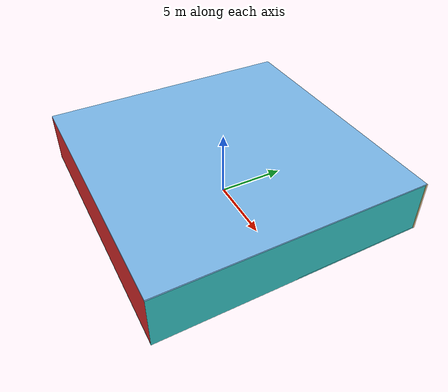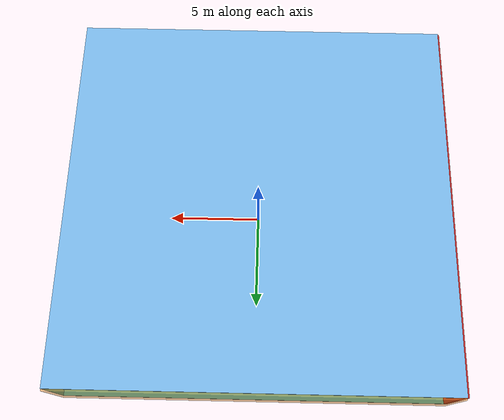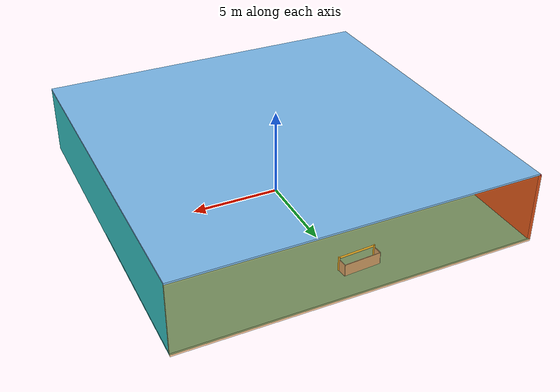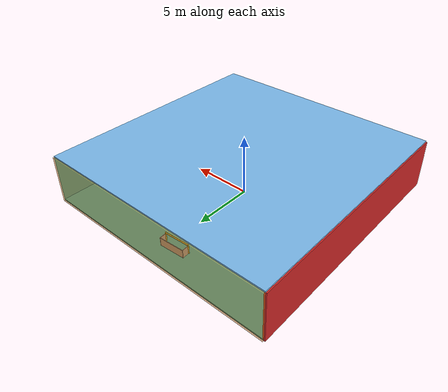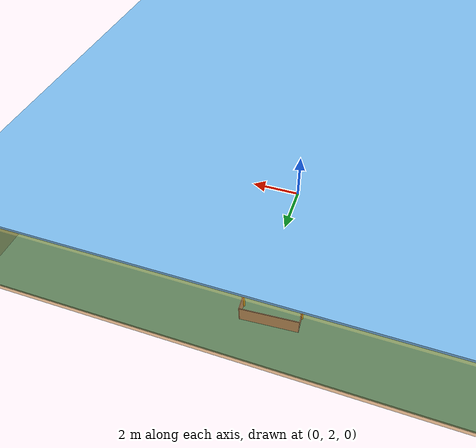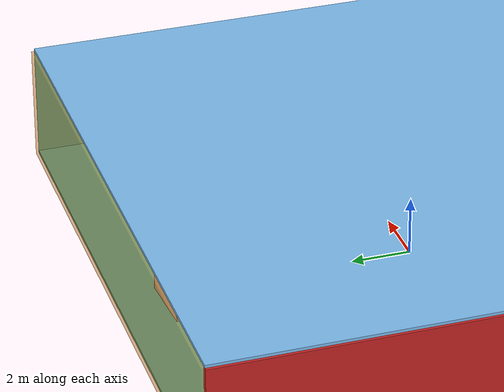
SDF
<sdf version="1.4">
 <world name="default">
  <physics type="ode">
   <max_step_size>0.001</max_step_size>
   <real_time_factor>1</real_time_factor>
   <real_time_update_rate>1000</real_time_update_rate>
   <gravity>0 0 -9.8</gravity>
  </physics>
  <scene><ambient>0.4 0.4 0.4 1</ambient><background>0.7 0.7 0.7 1</background><shadows>1</shadows></scene>
  <model name="Surrounding">
   <static>1</static>
   <link name="Ceiling">
    <collision name="Ceiling_Collision"><geometry><box><size>20 20 0.1</size></box></geometry></collision>
    <visual name="Ceiling_Visual">
     <geometry><box><size>20 20 0.1</size></box></geometry>
     <material>
      <script><uri>file://media/materials/scripts/gazebo.material</uri><name>Gazebo/SkyBlue</name></script>
     </material>
    </visual>
    <pose>0 0 4.05 0 0 0</pose>
   </link>
   <link name="Wall_South">
    <collision name="Wall_South_Collision">
     <geometry><box><size>20 0 4</size></box></geometry>
     <pose>0 0 2 0 -0 0</pose>
    </collision>
    <visual name="Wall_South_Visual">
     <pose>0 0 2 0 -0 0</pose>
     <geometry><box><size>20 0 4</size></box></geometry>
     <material>
      <script><uri>file://media/materials/scripts/gazebo.material</uri><name>Gazebo/Red</name></script>
     </material>
    </visual>
    <velocity_decay><linear>0</linear><angular>0</angular></velocity_decay>
    <pose>0 -10 0 0 -0 0</pose>
   </link>
   <link name="Wall_East">
    <collision name="Wall_21_Collision">
     <geometry><box><size>20 0 4</size></box></geometry>
     <pose>0 0 2 0 -0 0</pose>
    </collision>
    <visual name="Wall_21_Visual">
     <pose>0 0 2 0 -0 0</pose>
     <geometry><box><size>20 0 4</size></box></geometry>
     <material>
      <script><uri>file://media/materials/scripts/gazebo.material</uri><name>Gazebo/TurquoiseGlow</name></script>
     </material>
    </visual>
    <velocity_decay><linear>0</linear><angular>0</angular></velocity_decay>
    <pose>10 0 0 0 -0 1.5708</pose>
   </link>
   <link name="Wall_North">
    <collision name="Wall_22_Collision">
     <geometry><box><size>20 0.2 4</size></box></geometry>
     <pose>0 0 2 0 -0 0</pose>
    </collision>
    <visual name="Wall_22_Visual">
     <pose>0 0 2 0 -0 0</pose>
     <geometry><box><size>20 0.2 4</size></box></geometry>
     <material>
      <script>
       <uri>file://media/materials/scripts/gazebo.material</uri>
       <name>Gazebo/OrangeTransparent</name>
      </script>
     </material>
    </visual>
    <velocity_decay><linear>0</linear><angular>0</angular></velocity_decay>
    <pose>0 10 0 0 -0 0</pose>
   </link>
   <link name="Wall_West">
    <collision name="Wall_23_Collision">
     <geometry><box><size>20 0.2 4</size></box></geometry>
     <pose>0 0 2 0 -0 0</pose>
    </collision>
    <visual name="Wall_23_Visual">
     <pose>0 0 2 0 -0 0</pose>
     <geometry><box><size>20 0.2 4</size></box></geometry>
     <material>
      <script><uri>file://media/materials/scripts/gazebo.material</uri><name>Gazebo/RedGlow</name></script>
     </material>
    </visual>
    <velocity_decay><linear>0</linear><angular>0</angular></velocity_decay>
    <pose>-10 0 0 0 0 -1.5708</pose>
   </link>
   <link name="Ground_link">
    <collision name="collision">
     <pose>0 0 .05 0 -0 0</pose>
     <geometry><box><size>20 20 0.1</size></box></geometry>
    </collision>
    <visual name="visual">
     <pose>0 0 .05 0 -0 0</pose>
     <geometry><box><size>20 20 0.1</size></box></geometry>
     <material>
      <script><uri>file://media/materials/scripts/gazebo.material</uri><name>Gazebo/TurquoiseGlow</name></script>
     </material>
    </visual>
   </link>
   <static>1</static>
  </model>
  <spherical_coordinates>
   <surface_model>EARTH_WGS84</surface_model>
   <latitude_deg>0</latitude_deg>
   <longitude_deg>0</longitude_deg>
   <elevation>0</elevation>
   <heading_deg>0</heading_deg>
  </spherical_coordinates>
  <light name="lightball_0" type="diffuse">
   <diffuse>0.8 0.8 0.8 1</diffuse>
   <specular>0.2 0.2 0.2 1</specular>
   <attenuation>
    <range>100</range>
    <constant>0.7</constant>
    <linear>0.01</linear>
    <quadratic>0.001</quadratic>
   </attenuation>
   <direction>-0.5 0.1 -0.9</direction>
   <pose>1.47352804204 -2.65617357011 1.59800850372 0 0 0</pose>
  </light>
  <light name="lightball_1" type="diffuse">
   <diffuse>0.8 0.8 0.8 1</diffuse>
   <specular>0.2 0.2 0.2 1</specular>
   <attenuation>
    <range>100</range>
    <constant>0.7</constant>
    <linear>0.01</linear>
    <quadratic>0.001</quadratic>
   </attenuation>
   <direction>-0.5 0.1 -0.9</direction>
   <pose>-5.87231763817 -1.18939537517 3.20949819112 0 0 0</pose>
  </light>
  <light name="lightball_2" type="diffuse">
   <diffuse>0.8 0.8 0.8 1</diffuse>
   <specular>0.2 0.2 0.2 1</specular>
   <attenuation>
    <range>100</range>
    <constant>0.7</constant>
    <linear>0.01</linear>
    <quadratic>0.001</quadratic>
   </attenuation>
   <direction>-0.5 0.1 -0.9</direction>
   <pose>6.95654675496 -2.20131014088 3.28160814113 0 0 0</pose>
  </light>
  <light name="lightball_3" type="diffuse">
   <diffuse>0.8 0.8 0.8 1</diffuse>
   <specular>0.2 0.2 0.2 1</specular>
   <attenuation>
    <range>100</range>
    <constant>0.7</constant>
    <linear>0.01</linear>
    <quadratic>0.001</quadratic>
   </attenuation>
   <direction>-0.5 0.1 -0.9</direction>
   <pose>-0.931437812217 8.7429273224 3.04738062278 0 0 0</pose>
  </light>
  <light name="lightball_4" type="diffuse">
   <diffuse>0.8 0.8 0.8 1</diffuse>
   <specular>0.2 0.2 0.2 1</specular>
   <attenuation>
    <range>100</range>
    <constant>0.7</constant>
    <linear>0.01</linear>
    <quadratic>0.001</quadratic>
   </attenuation>
   <direction>-0.5 0.1 -0.9</direction>
   <pose>3.97386507129 2.63965548264 1.18631742766 0 0 0</pose>
  </light>
  <light name="lightball_5" type="diffuse">
   <diffuse>0.8 0.8 0.8 1</diffuse>
   <specular>0.2 0.2 0.2 1</specular>
   <attenuation>
    <range>100</range>
    <constant>0.7</constant>
    <linear>0.01</linear>
    <quadratic>0.001</quadratic>
   </attenuation>
   <direction>-0.5 0.1 -0.9</direction>
   <pose>-9.47929492649 1.86164118537 0.989812011636 0 0 0</pose>
  </light>
  <light name="lightball_6" type="diffuse">
   <diffuse>0.8 0.8 0.8 1</diffuse>
   <specular>0.2 0.2 0.2 1</specular>
   <attenuation>
    <range>100</range>
    <constant>0.7</constant>
    <linear>0.01</linear>
    <quadratic>0.001</quadratic>
   </attenuation>
   <direction>-0.5 0.1 -0.9</direction>
   <pose>5.6639233647 -4.6875431861 2.31967632358 0 0 0</pose>
  </light>
  <light name="lightball_7" type="diffuse">
   <diffuse>0.8 0.8 0.8 1</diffuse>
   <specular>0.2 0.2 0.2 1</specular>
   <attenuation>
    <range>100</range>
    <constant>0.7</constant>
    <linear>0.01</linear>
    <quadratic>0.001</quadratic>
   </attenuation>
   <direction>-0.5 0.1 -0.9</direction>
   <pose>2.57437131998 -6.10067473899 1.16401399616 0 0 0</pose>
  </light>
  <light name="lightball_8" type="diffuse">
   <diffuse>0.8 0.8 0.8 1</diffuse>
   <specular>0.2 0.2 0.2 1</specular>
   <attenuation>
    <range>100</range>
    <constant>0.7</constant>
    <linear>0.01</linear>
    <quadratic>0.001</quadratic>
   </attenuation>
   <direction>-0.5 0.1 -0.9</direction>
   <pose>9.97960523923 1.02931592424 2.4023346411 0 0 0</pose>
  </light>
  <light name="lightball_9" type="diffuse">
   <diffuse>0.8 0.8 0.8 1</diffuse>
   <specular>0.2 0.2 0.2 1</specular>
   <attenuation>
    <range>100</range>
    <constant>0.7</constant>
    <linear>0.01</linear>
    <quadratic>0.001</quadratic>
   </attenuation>
   <direction>-0.5 0.1 -0.9</direction>
   <pose>-3.90831607144 2.66925268441 1.67347580017 0 0 0</pose>
  </light>
  <light name="lightball_10" type="diffuse">
   <diffuse>0.8 0.8 0.8 1</diffuse>
   <specular>0.2 0.2 0.2 1</specular>
   <attenuation>
    <range>100</range>
    <constant>0.7</constant>
    <linear>0.01</linear>
    <quadratic>0.001</quadratic>
   </attenuation>
   <direction>-0.5 0.1 -0.9</direction>
   <pose>1.47134652031 -0.0242740878566 1.7973831164 0 0 0</pose>
  </light>
  <include>
   <uri>model://construction_cone</uri>
   <pose>-5.00989193778 -6.71547549327 0 0 0 1.47956672566</pose>
  </include>
  <include>
   <uri>model://robocup_3Dsim_goal</uri>
   <pose>-0.701528589576 7.97427632432 0 0 0 1.63215726158</pose>
  </include>
  <include><uri>model://table</uri><pose>1.79633539794 4.59580884561 0 0 0 2.45307305803</pose></include>
  <include><uri>model://cabinet</uri><pose>7.71281572789 -7.68141169594 0 0 0 2.34515001907</pose></include>
 </world>
</sdf>

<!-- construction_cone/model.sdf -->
<sdf version="1.5">
  <model name="Construction Cone">
    <link name="link">
      <collision name="collision">
        <geometry>
          <mesh>
            <scale>10 10 10</scale>
            <uri>file://isr-testbed/construction_cone/meshes/construction_cone.dae</uri>
          </mesh>
        </geometry>
      </collision>
      <visual name="visual">
        <geometry>
          <mesh>
            <scale>10 10 10</scale>
            <uri>file://isr-testbed/construction_cone/meshes/construction_cone.dae</uri>
          </mesh>
        </geometry>
      </visual>
    </link>
  </model>
</sdf>

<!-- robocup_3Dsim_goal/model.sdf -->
<sdf version="1.5">
  <model name="robocup_3d_goal">
    <static>true</static>
    <link name="left_post">
      <pose>0 1.05 0.45 0 0 0</pose>
      <collision name="collision">
        <geometry>
          <cylinder>
            <radius>0.05</radius>
            <length>0.9</length>
          </cylinder>
        </geometry>
      </collision>
      <visual name="visual">
        <geometry>
          <cylinder>
            <radius>0.05</radius>
            <length>0.9</length>
          </cylinder>
        </geometry>
        <material>
          <script>
            <uri>file://media/materials/scripts/gazebo.material</uri>
            <name>Gazebo/ZincYellow</name>
          </script>
        </material>
      </visual>
    </link>
    <link name="left_support_horiz_lower">
      <pose>0.30 1.05 0.01 0 0 0</pose>
      <collision name="collision">
        <geometry>
          <box>
            <size>0.50 0.02 0.02</size>
          </box>
        </geometry>
      </collision>
      <visual name="visual">
        <geometry>
          <box>
            <size>0.50 0.02 0.02</size>
          </box>
        </geometry>
        <material>
          <script>
            <uri>file://media/materials/scripts/gazebo.material</uri>
            <name>Gazebo/White</name>
          </script>
        </material>
      </visual>
    </link>
    <link name="left_support_horiz_upper">
      <pose>0.30 1.05 0.79 0 0 0</pose>
      <collision name="collision">
        <geometry>
          <box>
            <size>0.50 0.02 0.02</size>
          </box>
        </geometry>
      </collision>
      <visual name="visual">
        <geometry>
          <box>
            <size>0.50 0.02 0.02</size>
          </box>
        </geometry>
        <material>
          <script>
            <uri>file://media/materials/scripts/gazebo.material</uri>
            <name>Gazebo/White</name>
          </script>
        </material>
      </visual>
    </link>
    <link name="left_support_vertical">
      <pose>0.56 1.05 0.4 0 1.5708 0</pose>
      <collision name="collision">
        <geometry>
          <box>
            <size>0.80 0.02 0.02</size>
          </box>
        </geometry>
      </collision>
      <visual name="visual">
        <geometry>
          <box>
            <size>0.80 0.02 0.02</size>
          </box>
        </geometry>
        <material>
          <script>
            <uri>file://media/materials/scripts/gazebo.material</uri>
            <name>Gazebo/White</name>
          </script>
        </material>
      </visual>
    </link>
    <link name="right_support_horiz_lower">
      <pose>0.30 -1.05 0.01 0 0 0</pose>
      <collision name="collision">
        <geometry>
          <box>
            <size>0.50 0.02 0.02</size>
          </box>
        </geometry>
      </collision>
      <visual name="visual">
        <geometry>
          <box>
            <size>0.50 0.02 0.02</size>
          </box>
        </geometry>
        <material>
          <script>
            <uri>file://media/materials/scripts/gazebo.material</uri>
            <name>Gazebo/White</name>
          </script>
        </material>
      </visual>
    </link>
    <link name="right_support_horiz_upper">
      <pose>0.30 -1.05 0.79 0 0 0</pose>
      <collision name="collision">
        <geometry>
          <box>
            <size>0.50 0.02 0.02</size>
          </box>
        </geometry>
      </collision>
      <visual name="visual">
        <geometry>
          <box>
            <size>0.50 0.02 0.02</size>
          </box>
        </geometry>
        <material>
          <script>
            <uri>file://media/materials/scripts/gazebo.material</uri>
            <name>Gazebo/White</name>
          </script>
        </material>
      </visual>
    </link>
    <link name="right_support_vertical">
      <pose>0.56 -1.05 0.4 0 1.5708 0</pose>
      <collision name="collision">
        <geometry>
          <box>
            <size>0.80 0.02 0.02</size>
          </box>
        </geometry>
      </collision>
      <visual name="visual">
        <geometry>
          <box>
            <size>0.80 0.02 0.02</size>
          </box>
        </geometry>
        <material>
          <script>
            <uri>file://media/materials/scripts/gazebo.material</uri>
            <name>Gazebo/White</name>
          </script>
        </material>
      </visual>
    </link>
    <link name="center_support_horiz_lower">
      <pose>0.56 0 0.01 0 1.5708 0</pose>
      <collision name="collision">
        <geometry>
          <box>
            <size>0.02 2.08 0.02</size>
          </box>
        </geometry>
      </collision>
      <visual name="visual">
        <geometry>
          <box>
            <size>0.02 2.08 0.02</size>
          </box>
        </geometry>
        <material>
          <script>
            <uri>file://media/materials/scripts/gazebo.material</uri>
            <name>Gazebo/White</name>
          </script>
        </material>
      </visual>
    </link>
    <link name="center_support_horiz_upper">
      <pose>0.56 0 0.79 0 1.5708 0</pose>
      <collision name="collision">
        <geometry>
          <box>
            <size>0.02 2.08 0.02</size>
          </box>
        </geometry>
      </collision>
      <visual name="visual">
        <geometry>
          <box>
            <size>0.02 2.08 0.02</size>
          </box>
        </geometry>
        <material>
          <script>
            <uri>file://media/materials/scripts/gazebo.material</uri>
            <name>Gazebo/White</name>
          </script>
        </material>
      </visual>
    </link>
    <link name="right_post">
      <pose>0 -1.05 0.45 0 0 0</pose>
      <collision name="collision">
        <geometry>
          <cylinder>
            <radius>0.05</radius>
            <length>0.9</length>
          </cylinder>
        </geometry>
      </collision>
      <visual name="visual">
        <geometry>
          <cylinder>
            <radius>0.05</radius>
            <length>0.9</length>
          </cylinder>
        </geometry>
        <material>
          <script>
            <uri>file://media/materials/scripts/gazebo.material</uri>
            <name>Gazebo/ZincYellow</name>
          </script>
        </material>
      </visual>
    </link>
    <link name="crossbar">
      <pose>0 0 0.85 1.57 1.57 0</pose>
      <collision name="collision">
        <geometry>
          <cylinder>
            <radius>0.05</radius>
            <length>2.0</length>
          </cylinder>
        </geometry>
      </collision>
      <visual name="visual">
        <geometry>
          <cylinder>
            <radius>0.05</radius>
            <length>2.0</length>
          </cylinder>
        </geometry>
        <material>
          <script>
            <uri>file://media/materials/scripts/gazebo.material</uri>
            <name>Gazebo/ZincYellow</name>
          </script>
        </material>
      </visual>
    </link>
    <link name="center_net">
      <pose>0.56 0 0.40 0 0 0</pose>
      <collision name="collision">
        <geometry>
          <box>
            <size>0.01 2.1 0.80</size>
          </box>
        </geometry>
      </collision>
      <visual name="visual">
        <geometry>
          <box>
            <size>0.01 2.1 0.80</size>
          </box>
        </geometry>
        <material>
          <script>
            <uri>model://../model_source/models/robocup09_spl_field/materials/scripts/</uri>
            <uri>model://../model_source/models/robocup09_spl_field/materials/textures/</uri>
            <name>RoboCup/Net</name>
          </script>
        </material>
      </visual>
    </link>
    <link name="left_net">
      <pose>0.30 1.05 0.40 0 0 0</pose>
      <collision name="collision">
        <geometry>
          <box>
            <size>0.50 0.01 0.76</size>
          </box>
        </geometry>
      </collision>
      <visual name="visual">
        <geometry>
          <box>
            <size>0.50 0.01 0.76</size>
          </box>
        </geometry>
        <material>
          <script>
            <uri>model://../model_source/models/robocup09_spl_field/materials/scripts/</uri>
            <uri>model://../model_source/models/robocup09_spl_field/materials/textures/</uri>
            <name>RoboCup/Net</name>
          </script>
        </material>
      </visual>
    </link>
    <link name="right_net">
      <pose>0.30 -1.05 0.40 0 0 0</pose>
      <collision name="collision">
        <geometry>
          <box>
            <size>0.50 0.01 0.76</size>
          </box>
        </geometry>
      </collision>
      <visual name="visual">
        <geometry>
          <box>
            <size>0.50 0.01 0.76</size>
          </box>
        </geometry>
        <material>
          <script>
            <uri>model://../model_source/models/robocup09_spl_field/materials/scripts/</uri>
            <uri>model://../model_source/models/robocup09_spl_field/materials/textures/</uri>
            <name>RoboCup/Net</name>
          </script>
        </material>
      </visual>
    </link>
  </model>
</sdf>

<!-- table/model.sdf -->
<sdf version="1.5">
  <model name="table">
    <static>true</static>
    <link name="link">
      <collision name="surface">
        <pose>0 0 1.0 0 0 0</pose>
        <geometry>
          <box>
            <size>1.5 0.8 0.03</size>
          </box>
        </geometry>
        <surface>
          <friction>
            <ode>
              <mu>0.6</mu>
              <mu2>0.6</mu2>
            </ode>
          </friction>
        </surface>
      </collision>
      <visual name="visual1">
        <pose>0 0 1.0 0 0 0</pose>
        <geometry>
          <box>
            <size>1.5 0.8 0.03</size>
          </box>
        </geometry>
        <material>
          <script>
            <uri>model://media/materials/scripts/gazebo.material</uri>
            <name>Gazebo/Wood</name>
          </script>
        </material>
      </visual>
      <collision name="front_left_leg">
        <pose>0.68 0.38 0.5 0 0 0</pose>
        <geometry>
          <cylinder>
            <radius>0.02</radius>
            <length>1.0</length>
          </cylinder>
        </geometry>
      </collision>
      <visual name="front_left_leg">
        <pose>0.68 0.38 0.5 0 0 0</pose>
        <geometry>
          <cylinder>
            <radius>0.02</radius>
            <length>1.0</length>
          </cylinder>
        </geometry>
        <material>
          <script>
            <uri>model://media/materials/scripts/gazebo.material</uri>
            <name>Gazebo/Grey</name>
          </script>
        </material>
      </visual>
      <collision name="front_right_leg">
        <pose>0.68 -0.38 0.5 0 0 0</pose>
        <geometry>
          <cylinder>
            <radius>0.02</radius>
            <length>1.0</length>
          </cylinder>
        </geometry>
      </collision>
      <visual name="front_right_leg">
        <pose>0.68 -0.38 0.5 0 0 0</pose>
        <geometry>
          <cylinder>
            <radius>0.02</radius>
            <length>1.0</length>
          </cylinder>
        </geometry>
        <material>
          <script>
            <uri>model://media/materials/scripts/gazebo.material</uri>
            <name>Gazebo/Grey</name>
          </script>
        </material>
      </visual>
      <collision name="back_right_leg">
        <pose>-0.68 -0.38 0.5 0 0 0</pose>
        <geometry>
          <cylinder>
            <radius>0.02</radius>
            <length>1.0</length>
          </cylinder>
        </geometry>
      </collision>
      <visual name="back_right_leg">
        <pose>-0.68 -0.38 0.5 0 0 0</pose>
        <geometry>
          <cylinder>
            <radius>0.02</radius>
            <length>1.0</length>
          </cylinder>
        </geometry>
        <material>
          <script>
            <uri>model://media/materials/scripts/gazebo.material</uri>
            <name>Gazebo/Grey</name>
          </script>
        </material>
      </visual>
      <collision name="back_left_leg">
        <pose>-0.68 0.38 0.5 0 0 0</pose>
        <geometry>
          <cylinder>
            <radius>0.02</radius>
            <length>1.0</length>
          </cylinder>
        </geometry>
      </collision>
      <visual name="back_left_leg">
        <pose>-0.68 0.38 0.5 0 0 0</pose>
        <geometry>
          <cylinder>
            <radius>0.02</radius>
            <length>1.0</length>
          </cylinder>
        </geometry>
        <material>
          <script>
            <uri>model://media/materials/scripts/gazebo.material</uri>
            <name>Gazebo/Grey</name>
          </script>
        </material>
      </visual>
    </link>
  </model>
</sdf>

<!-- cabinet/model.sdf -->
<sdf version="1.5">
  <model name="cabinet">
    <static>true</static>
    <link name="cabinet_bottom_plate">
      <inertial>
        <pose>0 0 -1 0 0 0</pose>
        <inertia>
          <ixx>2.050000</ixx>
          <ixy>0</ixy>
          <ixz>0</ixz>
          <iyy>2.050000</iyy>
          <iyz>0</iyz>
          <izz>2.050000</izz>
        </inertia>
        <mass>25.000000</mass>
      </inertial>
      <collision name="cabinet_bottom_plate_geom">
        <pose>0 0 0.010000 0 0 0</pose>
        <geometry>
          <box>
            <size>0.450000 0.450000 0.020000</size>
          </box>
        </geometry>
      </collision>
      <visual name="cabinet_bottom_plate_geom_visual">
        <pose>0 0 0.010000 0 0 0</pose>
        <geometry>
          <box>
            <size>0.450000 0.450000 0.020000</size>
          </box>
        </geometry>
        <material>
          <script>
            <uri>model://media/materials/scripts/gazebo.material</uri>
            <name>Gazebo/Wood</name>
          </script>
        </material>
      </visual>
      <collision name="cabinet_bottom_plate_geom_cabinet_back_plate">
        <pose>0.235000 0 0.510000 0 0 0</pose>
        <geometry>
          <box>
            <size>0.020000 0.450000 1.020000</size>
          </box>
        </geometry>
      </collision>
      <visual name="cabinet_bottom_plate_geom_cabinet_back_plate_visual">
        <pose>0.235000 0 0.510000 0 0 0</pose>
        <geometry>
          <box>
            <size>0.020000 0.450000 1.020000</size>
          </box>
        </geometry>
        <material>
          <script>
            <uri>model://media/materials/scripts/gazebo.material</uri>
            <name>Gazebo/Wood</name>
          </script>
        </material>
      </visual>
      <collision name="cabinet_bottom_plate_geom_cabinet_left_plate">
        <pose>0 0.235000 0.510000 0 0 0</pose>
        <geometry>
          <box>
            <size>0.450000 0.020000 1.020000</size>
          </box>
        </geometry>
      </collision>
      <visual name="cabinet_bottom_plate_geom_cabinet_left_plate_visual">
        <pose>0 0.235000 0.510000 0 0 0</pose>
        <geometry>
          <box>
            <size>0.450000 0.020000 1.020000</size>
          </box>
        </geometry>
        <material>
          <script>
            <uri>model://media/materials/scripts/gazebo.material</uri>
            <name>Gazebo/Wood</name>
          </script>
        </material>
      </visual>
      <collision name="cabinet_bottom_plate_geom_cabinet_middle_plate">
        <pose>0 0 0.510000 0 0 0</pose>
        <geometry>
          <box>
            <size>0.450000 0.450000 0.020000</size>
          </box>
        </geometry>
      </collision>
      <visual name="cabinet_bottom_plate_geom_cabinet_middle_plate_visual">
        <pose>0 0 0.510000 0 0 0</pose>
        <geometry>
          <box>
            <size>0.450000 0.450000 0.020000</size>
          </box>
        </geometry>
        <material>
          <script>
            <uri>model://media/materials/scripts/gazebo.material</uri>
            <name>Gazebo/Wood</name>
          </script>
        </material>
      </visual>
      <collision name="cabinet_bottom_plate_geom_cabinet_right_plate">
        <pose>0 -0.235000 0.510000 0 0 0</pose>
        <geometry>
          <box>
            <size>0.450000 0.020000 1.020000</size>
          </box>
        </geometry>
      </collision>
      <visual name="cabinet_bottom_plate_geom_cabinet_right_plate_visual">
        <pose>0 -0.235000 0.510000 0 0 0</pose>
        <geometry>
          <box>
            <size>0.450000 0.020000 1.020000</size>
          </box>
        </geometry>
        <material>
          <script>
            <uri>model://media/materials/scripts/gazebo.material</uri>
            <name>Gazebo/Wood</name>
          </script>
        </material>
      </visual>
      <collision name="cabinet_bottom_plate_geom_cabinet_top_plate">
        <pose>0 0 1.010000 0 0 0</pose>
        <geometry>
          <box>
            <size>0.450000 0.450000 0.020000</size>
          </box>
        </geometry>
      </collision>
      <visual name="cabinet_bottom_plate_geom_cabinet_top_plate_visual">
        <pose>0 0 1.010000 0 0 0</pose>
        <geometry>
          <box>
            <size>0.450000 0.450000 0.020000</size>
          </box>
        </geometry>
        <material>
          <script>
            <uri>model://media/materials/scripts/gazebo.material</uri>
            <name>Gazebo/Wood</name>
          </script>
        </material>
      </visual>
    </link>
  </model>
</sdf>
